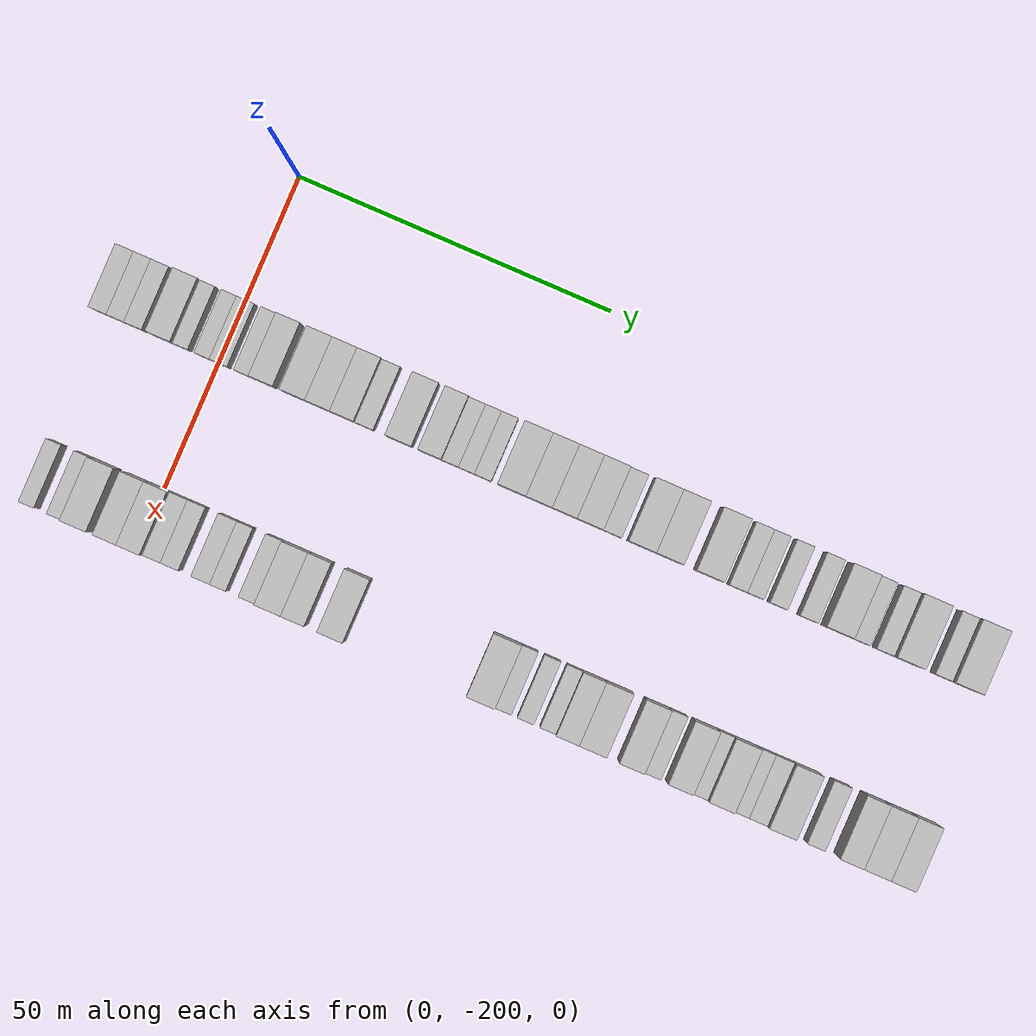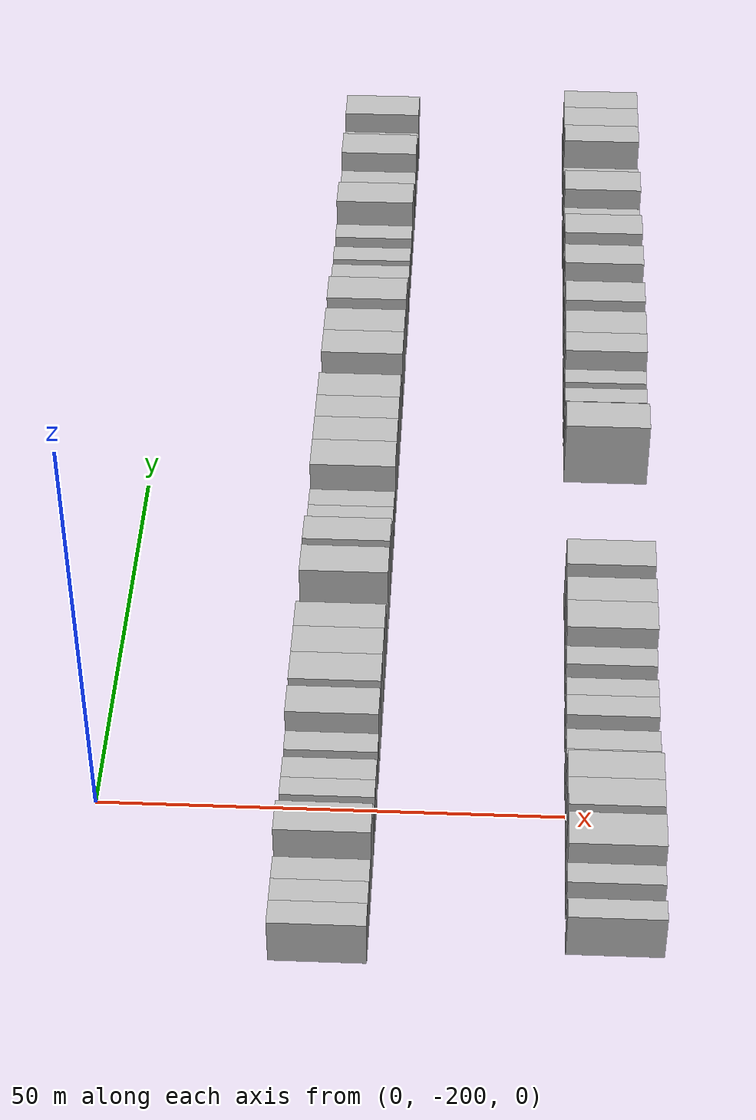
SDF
<sdf version="1.6">
 <world name="default">
  <model name="building_1">
   <static>1</static>
   <pose>25.0000 -218.5558 0 0.000000 0.000000 0.000000</pose>
   <link name="link">
    <pose>0 0 3.00 0 0 0</pose>
    <collision name="collision"><geometry><box><size>10.0000 2.8884 6.0000</size></box></geometry></collision>
    <visual name="visual">
     <cast_shadows>0</cast_shadows>
     <geometry><box><size>10.0000 2.8884 6.0000</size></box></geometry>
     <material>
      <script>
       <uri>model://HANNAS_wall/materials/scripts</uri>
       <uri>model://HANNAS_wall/materials/textures</uri>
       <name>vrc/HANNAS_wall</name>
      </script>
     </material>
    </visual>
   </link>
  </model>
  <model name="building_2">
   <static>1</static>
   <pose>25.0000 -215.7326 0 0.000000 0.000000 0.000000</pose>
   <link name="link">
    <pose>0 0 3.00 0 0 0</pose>
    <collision name="collision"><geometry><box><size>10.0000 2.7580 6.0000</size></box></geometry></collision>
    <visual name="visual">
     <cast_shadows>0</cast_shadows>
     <geometry><box><size>10.0000 2.7580 6.0000</size></box></geometry>
     <material>
      <script>
       <uri>model://HANNAS_wall/materials/scripts</uri>
       <uri>model://HANNAS_wall/materials/textures</uri>
       <name>vrc/HANNAS_wall</name>
      </script>
     </material>
    </visual>
   </link>
  </model>
  <model name="building_3">
   <static>1</static>
   <pose>25.0000 -212.9331 0 0.000000 0.000000 0.000000</pose>
   <link name="link">
    <pose>0 0 3.00 0 0 0</pose>
    <collision name="collision"><geometry><box><size>10.0000 2.8410 6.0000</size></box></geometry></collision>
    <visual name="visual">
     <cast_shadows>0</cast_shadows>
     <geometry><box><size>10.0000 2.8410 6.0000</size></box></geometry>
     <material>
      <script>
       <uri>model://HANNAS_wall/materials/scripts</uri>
       <uri>model://HANNAS_wall/materials/textures</uri>
       <name>vrc/HANNAS_wall</name>
      </script>
     </material>
    </visual>
   </link>
  </model>
  <model name="building_4">
   <static>1</static>
   <pose>25.0000 -208.5727 0 0.000000 0.000000 0.000000</pose>
   <link name="link">
    <pose>0 0 4.50 0 0 0</pose>
    <collision name="collision"><geometry><box><size>10.0000 3.8800 9.0000</size></box></geometry></collision>
    <visual name="visual">
     <cast_shadows>0</cast_shadows>
     <geometry><box><size>10.0000 3.8800 9.0000</size></box></geometry>
     <material>
      <script>
       <uri>model://HANNAS_wall/materials/scripts</uri>
       <uri>model://HANNAS_wall/materials/textures</uri>
       <name>vrc/HANNAS_wall</name>
      </script>
     </material>
    </visual>
   </link>
  </model>
  <model name="building_5">
   <static>1</static>
   <pose>25.0000 -205.4299 0 0.000000 0.000000 0.000000</pose>
   <link name="link">
    <pose>0 0 3.00 0 0 0</pose>
    <collision name="collision"><geometry><box><size>10.0000 2.4056 6.0000</size></box></geometry></collision>
    <visual name="visual">
     <cast_shadows>0</cast_shadows>
     <geometry><box><size>10.0000 2.4056 6.0000</size></box></geometry>
     <material>
      <script>
       <uri>model://HANNAS_wall/materials/scripts</uri>
       <uri>model://HANNAS_wall/materials/textures</uri>
       <name>vrc/HANNAS_wall</name>
      </script>
     </material>
    </visual>
   </link>
  </model>
  <model name="building_6">
   <static>1</static>
   <pose>25.0000 -202.0179 0 0.000000 0.000000 0.000000</pose>
   <link name="link">
    <pose>0 0 3.00 0 0 0</pose>
    <collision name="collision"><geometry><box><size>10.0000 2.4182 6.0000</size></box></geometry></collision>
    <visual name="visual">
     <cast_shadows>0</cast_shadows>
     <geometry><box><size>10.0000 2.4182 6.0000</size></box></geometry>
     <material>
      <script>
       <uri>model://HANNAS_wall/materials/scripts</uri>
       <uri>model://HANNAS_wall/materials/textures</uri>
       <name>vrc/HANNAS_wall</name>
      </script>
     </material>
    </visual>
   </link>
  </model>
  <model name="building_7">
   <static>1</static>
   <pose>25.0000 -199.3907 0 0.000000 0.000000 0.000000</pose>
   <link name="link">
    <pose>0 0 3.00 0 0 0</pose>
    <collision name="collision"><geometry><box><size>10.0000 2.8362 6.0000</size></box></geometry></collision>
    <visual name="visual">
     <cast_shadows>0</cast_shadows>
     <geometry><box><size>10.0000 2.8362 6.0000</size></box></geometry>
     <material>
      <script>
       <uri>model://HANNAS_wall/materials/scripts</uri>
       <uri>model://HANNAS_wall/materials/textures</uri>
       <name>vrc/HANNAS_wall</name>
      </script>
     </material>
    </visual>
   </link>
  </model>
  <model name="building_8">
   <static>1</static>
   <pose>25.0000 -195.6416 0 0.000000 0.000000 0.000000</pose>
   <link name="link">
    <pose>0 0 3.00 0 0 0</pose>
    <collision name="collision"><geometry><box><size>10.0000 2.6619 6.0000</size></box></geometry></collision>
    <visual name="visual">
     <cast_shadows>0</cast_shadows>
     <geometry><box><size>10.0000 2.6619 6.0000</size></box></geometry>
     <material>
      <script>
       <uri>model://HANNAS_wall/materials/scripts</uri>
       <uri>model://HANNAS_wall/materials/textures</uri>
       <name>vrc/HANNAS_wall</name>
      </script>
     </material>
    </visual>
   </link>
  </model>
  <model name="building_9">
   <static>1</static>
   <pose>25.0000 -192.4022 0 0.000000 0.000000 0.000000</pose>
   <link name="link">
    <pose>0 0 4.50 0 0 0</pose>
    <collision name="collision"><geometry><box><size>10.0000 3.8170 9.0000</size></box></geometry></collision>
    <visual name="visual">
     <cast_shadows>0</cast_shadows>
     <geometry><box><size>10.0000 3.8170 9.0000</size></box></geometry>
     <material>
      <script>
       <uri>model://HANNAS_wall/materials/scripts</uri>
       <uri>model://HANNAS_wall/materials/textures</uri>
       <name>vrc/HANNAS_wall</name>
      </script>
     </material>
    </visual>
   </link>
  </model>
  <model name="building_10">
   <static>1</static>
   <pose>25.0000 -187.4737 0 0.000000 0.000000 0.000000</pose>
   <link name="link">
    <pose>0 0 4.50 0 0 0</pose>
    <collision name="collision"><geometry><box><size>10.0000 4.0400 9.0000</size></box></geometry></collision>
    <visual name="visual">
     <cast_shadows>0</cast_shadows>
     <geometry><box><size>10.0000 4.0400 9.0000</size></box></geometry>
     <material>
      <script>
       <uri>model://HANNAS_wall/materials/scripts</uri>
       <uri>model://HANNAS_wall/materials/textures</uri>
       <name>vrc/HANNAS_wall</name>
      </script>
     </material>
    </visual>
   </link>
  </model>
  <model name="building_11">
   <static>1</static>
   <pose>25.0000 -183.4973 0 0.000000 0.000000 0.000000</pose>
   <link name="link">
    <pose>0 0 4.50 0 0 0</pose>
    <collision name="collision"><geometry><box><size>10.0000 3.9128 9.0000</size></box></geometry></collision>
    <visual name="visual">
     <cast_shadows>0</cast_shadows>
     <geometry><box><size>10.0000 3.9128 9.0000</size></box></geometry>
     <material>
      <script>
       <uri>model://HANNAS_wall/materials/scripts</uri>
       <uri>model://HANNAS_wall/materials/textures</uri>
       <name>vrc/HANNAS_wall</name>
      </script>
     </material>
    </visual>
   </link>
  </model>
  <model name="building_12">
   <static>1</static>
   <pose>25.0000 -179.6681 0 0.000000 0.000000 0.000000</pose>
   <link name="link">
    <pose>0 0 4.50 0 0 0</pose>
    <collision name="collision"><geometry><box><size>10.0000 3.7454 9.0000</size></box></geometry></collision>
    <visual name="visual">
     <cast_shadows>0</cast_shadows>
     <geometry><box><size>10.0000 3.7454 9.0000</size></box></geometry>
     <material>
      <script>
       <uri>model://HANNAS_wall/materials/scripts</uri>
       <uri>model://HANNAS_wall/materials/textures</uri>
       <name>vrc/HANNAS_wall</name>
      </script>
     </material>
    </visual>
   </link>
  </model>
  <model name="building_13">
   <static>1</static>
   <pose>25.0000 -176.3302 0 0.000000 0.000000 0.000000</pose>
   <link name="link">
    <pose>0 0 3.00 0 0 0</pose>
    <collision name="collision"><geometry><box><size>10.0000 2.9305 6.0000</size></box></geometry></collision>
    <visual name="visual">
     <cast_shadows>0</cast_shadows>
     <geometry><box><size>10.0000 2.9305 6.0000</size></box></geometry>
     <material>
      <script>
       <uri>model://HANNAS_wall/materials/scripts</uri>
       <uri>model://HANNAS_wall/materials/textures</uri>
       <name>vrc/HANNAS_wall</name>
      </script>
     </material>
    </visual>
   </link>
  </model>
  <model name="building_14">
   <static>1</static>
   <pose>25.0000 -170.7841 0 0.000000 0.000000 0.000000</pose>
   <link name="link">
    <pose>0 0 4.50 0 0 0</pose>
    <collision name="collision"><geometry><box><size>10.0000 4.1616 9.0000</size></box></geometry></collision>
    <visual name="visual">
     <cast_shadows>0</cast_shadows>
     <geometry><box><size>10.0000 4.1616 9.0000</size></box></geometry>
     <material>
      <script>
       <uri>model://HANNAS_wall/materials/scripts</uri>
       <uri>model://HANNAS_wall/materials/textures</uri>
       <name>vrc/HANNAS_wall</name>
      </script>
     </material>
    </visual>
   </link>
  </model>
  <model name="building_15">
   <static>1</static>
   <pose>25.0000 -165.8461 0 0.000000 0.000000 0.000000</pose>
   <link name="link">
    <pose>0 0 4.50 0 0 0</pose>
    <collision name="collision"><geometry><box><size>10.0000 3.7143 9.0000</size></box></geometry></collision>
    <visual name="visual">
     <cast_shadows>0</cast_shadows>
     <geometry><box><size>10.0000 3.7143 9.0000</size></box></geometry>
     <material>
      <script>
       <uri>model://HANNAS_wall/materials/scripts</uri>
       <uri>model://HANNAS_wall/materials/textures</uri>
       <name>vrc/HANNAS_wall</name>
      </script>
     </material>
    </visual>
   </link>
  </model>
  <model name="building_16">
   <static>1</static>
   <pose>25.0000 -162.6667 0 0.000000 0.000000 0.000000</pose>
   <link name="link">
    <pose>0 0 3.00 0 0 0</pose>
    <collision name="collision"><geometry><box><size>10.0000 2.6445 6.0000</size></box></geometry></collision>
    <visual name="visual">
     <cast_shadows>0</cast_shadows>
     <geometry><box><size>10.0000 2.6445 6.0000</size></box></geometry>
     <material>
      <script>
       <uri>model://HANNAS_wall/materials/scripts</uri>
       <uri>model://HANNAS_wall/materials/textures</uri>
       <name>vrc/HANNAS_wall</name>
      </script>
     </material>
    </visual>
   </link>
  </model>
  <model name="building_17">
   <static>1</static>
   <pose>25.0000 -160.0820 0 0.000000 0.000000 0.000000</pose>
   <link name="link">
    <pose>0 0 3.00 0 0 0</pose>
    <collision name="collision"><geometry><box><size>10.0000 2.5250 6.0000</size></box></geometry></collision>
    <visual name="visual">
     <cast_shadows>0</cast_shadows>
     <geometry><box><size>10.0000 2.5250 6.0000</size></box></geometry>
     <material>
      <script>
       <uri>model://HANNAS_wall/materials/scripts</uri>
       <uri>model://HANNAS_wall/materials/textures</uri>
       <name>vrc/HANNAS_wall</name>
      </script>
     </material>
    </visual>
   </link>
  </model>
  <model name="building_18">
   <static>1</static>
   <pose>25.0000 -157.4782 0 0.000000 0.000000 0.000000</pose>
   <link name="link">
    <pose>0 0 3.00 0 0 0</pose>
    <collision name="collision"><geometry><box><size>10.0000 2.6825 6.0000</size></box></geometry></collision>
    <visual name="visual">
     <cast_shadows>0</cast_shadows>
     <geometry><box><size>10.0000 2.6825 6.0000</size></box></geometry>
     <material>
      <script>
       <uri>model://HANNAS_wall/materials/scripts</uri>
       <uri>model://HANNAS_wall/materials/textures</uri>
       <name>vrc/HANNAS_wall</name>
      </script>
     </material>
    </visual>
   </link>
  </model>
  <model name="building_19">
   <static>1</static>
   <pose>25.0000 -152.8965 0 0.000000 0.000000 0.000000</pose>
   <link name="link">
    <pose>0 0 4.50 0 0 0</pose>
    <collision name="collision"><geometry><box><size>10.0000 4.4811 9.0000</size></box></geometry></collision>
    <visual name="visual">
     <cast_shadows>0</cast_shadows>
     <geometry><box><size>10.0000 4.4811 9.0000</size></box></geometry>
     <material>
      <script>
       <uri>model://HANNAS_wall/materials/scripts</uri>
       <uri>model://HANNAS_wall/materials/textures</uri>
       <name>vrc/HANNAS_wall</name>
      </script>
     </material>
    </visual>
   </link>
  </model>
  <model name="building_20">
   <static>1</static>
   <pose>25.0000 -148.5810 0 0.000000 0.000000 0.000000</pose>
   <link name="link">
    <pose>0 0 4.50 0 0 0</pose>
    <collision name="collision"><geometry><box><size>10.0000 4.1498 9.0000</size></box></geometry></collision>
    <visual name="visual">
     <cast_shadows>0</cast_shadows>
     <geometry><box><size>10.0000 4.1498 9.0000</size></box></geometry>
     <material>
      <script>
       <uri>model://HANNAS_wall/materials/scripts</uri>
       <uri>model://HANNAS_wall/materials/textures</uri>
       <name>vrc/HANNAS_wall</name>
      </script>
     </material>
    </visual>
   </link>
  </model>
  <model name="building_21">
   <static>1</static>
   <pose>25.0000 -144.5503 0 0.000000 0.000000 0.000000</pose>
   <link name="link">
    <pose>0 0 4.50 0 0 0</pose>
    <collision name="collision"><geometry><box><size>10.0000 3.9116 9.0000</size></box></geometry></collision>
    <visual name="visual">
     <cast_shadows>0</cast_shadows>
     <geometry><box><size>10.0000 3.9116 9.0000</size></box></geometry>
     <material>
      <script>
       <uri>model://HANNAS_wall/materials/scripts</uri>
       <uri>model://HANNAS_wall/materials/textures</uri>
       <name>vrc/HANNAS_wall</name>
      </script>
     </material>
    </visual>
   </link>
  </model>
  <model name="building_22">
   <static>1</static>
   <pose>25.0000 -140.5133 0 0.000000 0.000000 0.000000</pose>
   <link name="link">
    <pose>0 0 4.50 0 0 0</pose>
    <collision name="collision"><geometry><box><size>10.0000 4.1624 9.0000</size></box></geometry></collision>
    <visual name="visual">
     <cast_shadows>0</cast_shadows>
     <geometry><box><size>10.0000 4.1624 9.0000</size></box></geometry>
     <material>
      <script>
       <uri>model://HANNAS_wall/materials/scripts</uri>
       <uri>model://HANNAS_wall/materials/textures</uri>
       <name>vrc/HANNAS_wall</name>
      </script>
     </material>
    </visual>
   </link>
  </model>
  <model name="building_23">
   <static>1</static>
   <pose>25.0000 -136.9468 0 0.000000 0.000000 0.000000</pose>
   <link name="link">
    <pose>0 0 3.00 0 0 0</pose>
    <collision name="collision"><geometry><box><size>10.0000 2.9705 6.0000</size></box></geometry></collision>
    <visual name="visual">
     <cast_shadows>0</cast_shadows>
     <geometry><box><size>10.0000 2.9705 6.0000</size></box></geometry>
     <material>
      <script>
       <uri>model://HANNAS_wall/materials/scripts</uri>
       <uri>model://HANNAS_wall/materials/textures</uri>
       <name>vrc/HANNAS_wall</name>
      </script>
     </material>
    </visual>
   </link>
  </model>
  <model name="building_24">
   <static>1</static>
   <pose>25.0000 -132.2876 0 0.000000 0.000000 0.000000</pose>
   <link name="link">
    <pose>0 0 4.50 0 0 0</pose>
    <collision name="collision"><geometry><box><size>10.0000 4.3480 9.0000</size></box></geometry></collision>
    <visual name="visual">
     <cast_shadows>0</cast_shadows>
     <geometry><box><size>10.0000 4.3480 9.0000</size></box></geometry>
     <material>
      <script>
       <uri>model://HANNAS_wall/materials/scripts</uri>
       <uri>model://HANNAS_wall/materials/textures</uri>
       <name>vrc/HANNAS_wall</name>
      </script>
     </material>
    </visual>
   </link>
  </model>
  <model name="building_25">
   <static>1</static>
   <pose>25.0000 -127.9378 0 0.000000 0.000000 0.000000</pose>
   <link name="link">
    <pose>0 0 4.50 0 0 0</pose>
    <collision name="collision"><geometry><box><size>10.0000 4.3516 9.0000</size></box></geometry></collision>
    <visual name="visual">
     <cast_shadows>0</cast_shadows>
     <geometry><box><size>10.0000 4.3516 9.0000</size></box></geometry>
     <material>
      <script>
       <uri>model://HANNAS_wall/materials/scripts</uri>
       <uri>model://HANNAS_wall/materials/textures</uri>
       <name>vrc/HANNAS_wall</name>
      </script>
     </material>
    </visual>
   </link>
  </model>
  <model name="building_26">
   <static>1</static>
   <pose>25.0000 -121.5773 0 0.000000 0.000000 0.000000</pose>
   <link name="link">
    <pose>0 0 4.50 0 0 0</pose>
    <collision name="collision"><geometry><box><size>10.0000 4.3694 9.0000</size></box></geometry></collision>
    <visual name="visual">
     <cast_shadows>0</cast_shadows>
     <geometry><box><size>10.0000 4.3694 9.0000</size></box></geometry>
     <material>
      <script>
       <uri>model://HANNAS_wall/materials/scripts</uri>
       <uri>model://HANNAS_wall/materials/textures</uri>
       <name>vrc/HANNAS_wall</name>
      </script>
     </material>
    </visual>
   </link>
  </model>
  <model name="building_27">
   <static>1</static>
   <pose>25.0000 -116.9687 0 0.000000 0.000000 0.000000</pose>
   <link name="link">
    <pose>0 0 3.00 0 0 0</pose>
    <collision name="collision"><geometry><box><size>10.0000 2.8477 6.0000</size></box></geometry></collision>
    <visual name="visual">
     <cast_shadows>0</cast_shadows>
     <geometry><box><size>10.0000 2.8477 6.0000</size></box></geometry>
     <material>
      <script>
       <uri>model://HANNAS_wall/materials/scripts</uri>
       <uri>model://HANNAS_wall/materials/textures</uri>
       <name>vrc/HANNAS_wall</name>
      </script>
     </material>
    </visual>
   </link>
  </model>
  <model name="building_28">
   <static>1</static>
   <pose>25.0000 -114.2476 0 0.000000 0.000000 0.000000</pose>
   <link name="link">
    <pose>0 0 3.00 0 0 0</pose>
    <collision name="collision"><geometry><box><size>10.0000 2.5945 6.0000</size></box></geometry></collision>
    <visual name="visual">
     <cast_shadows>0</cast_shadows>
     <geometry><box><size>10.0000 2.5945 6.0000</size></box></geometry>
     <material>
      <script>
       <uri>model://HANNAS_wall/materials/scripts</uri>
       <uri>model://HANNAS_wall/materials/textures</uri>
       <name>vrc/HANNAS_wall</name>
      </script>
     </material>
    </visual>
   </link>
  </model>
  <model name="building_29">
   <static>1</static>
   <pose>25.0000 -110.5674 0 0.000000 0.000000 0.000000</pose>
   <link name="link">
    <pose>0 0 3.00 0 0 0</pose>
    <collision name="collision"><geometry><box><size>10.0000 2.7659 6.0000</size></box></geometry></collision>
    <visual name="visual">
     <cast_shadows>0</cast_shadows>
     <geometry><box><size>10.0000 2.7659 6.0000</size></box></geometry>
     <material>
      <script>
       <uri>model://HANNAS_wall/materials/scripts</uri>
       <uri>model://HANNAS_wall/materials/textures</uri>
       <name>vrc/HANNAS_wall</name>
      </script>
     </material>
    </visual>
   </link>
  </model>
  <model name="building_30">
   <static>1</static>
   <pose>25.0000 -105.7536 0 0.000000 0.000000 0.000000</pose>
   <link name="link">
    <pose>0 0 3.00 0 0 0</pose>
    <collision name="collision"><geometry><box><size>10.0000 2.8618 6.0000</size></box></geometry></collision>
    <visual name="visual">
     <cast_shadows>0</cast_shadows>
     <geometry><box><size>10.0000 2.8618 6.0000</size></box></geometry>
     <material>
      <script>
       <uri>model://HANNAS_wall/materials/scripts</uri>
       <uri>model://HANNAS_wall/materials/textures</uri>
       <name>vrc/HANNAS_wall</name>
      </script>
     </material>
    </visual>
   </link>
  </model>
  <model name="building_31">
   <static>1</static>
   <pose>25.0000 -101.1502 0 0.000000 0.000000 0.000000</pose>
   <link name="link">
    <pose>0 0 4.50 0 0 0</pose>
    <collision name="collision"><geometry><box><size>10.0000 4.3452 9.0000</size></box></geometry></collision>
    <visual name="visual">
     <cast_shadows>0</cast_shadows>
     <geometry><box><size>10.0000 4.3452 9.0000</size></box></geometry>
     <material>
      <script>
       <uri>model://HANNAS_wall/materials/scripts</uri>
       <uri>model://HANNAS_wall/materials/textures</uri>
       <name>vrc/HANNAS_wall</name>
      </script>
     </material>
    </visual>
   </link>
  </model>
  <model name="building_32">
   <static>1</static>
   <pose>25.0000 -97.5280 0 0.000000 0.000000 0.000000</pose>
   <link name="link">
    <pose>0 0 3.00 0 0 0</pose>
    <collision name="collision"><geometry><box><size>10.0000 2.8991 6.0000</size></box></geometry></collision>
    <visual name="visual">
     <cast_shadows>0</cast_shadows>
     <geometry><box><size>10.0000 2.8991 6.0000</size></box></geometry>
     <material>
      <script>
       <uri>model://HANNAS_wall/materials/scripts</uri>
       <uri>model://HANNAS_wall/materials/textures</uri>
       <name>vrc/HANNAS_wall</name>
      </script>
     </material>
    </visual>
   </link>
  </model>
  <model name="building_33">
   <static>1</static>
   <pose>25.0000 -93.6743 0 0.000000 0.000000 0.000000</pose>
   <link name="link">
    <pose>0 0 3.00 0 0 0</pose>
    <collision name="collision"><geometry><box><size>10.0000 2.8083 6.0000</size></box></geometry></collision>
    <visual name="visual">
     <cast_shadows>0</cast_shadows>
     <geometry><box><size>10.0000 2.8083 6.0000</size></box></geometry>
     <material>
      <script>
       <uri>model://HANNAS_wall/materials/scripts</uri>
       <uri>model://HANNAS_wall/materials/textures</uri>
       <name>vrc/HANNAS_wall</name>
      </script>
     </material>
    </visual>
   </link>
  </model>
  <model name="building_34">
   <static>1</static>
   <pose>25.0000 -90.0239 0 0.000000 0.000000 0.000000</pose>
   <link name="link">
    <pose>0 0 4.50 0 0 0</pose>
    <collision name="collision"><geometry><box><size>10.0000 4.4925 9.0000</size></box></geometry></collision>
    <visual name="visual">
     <cast_shadows>0</cast_shadows>
     <geometry><box><size>10.0000 4.4925 9.0000</size></box></geometry>
     <material>
      <script>
       <uri>model://HANNAS_wall/materials/scripts</uri>
       <uri>model://HANNAS_wall/materials/textures</uri>
       <name>vrc/HANNAS_wall</name>
      </script>
     </material>
    </visual>
   </link>
  </model>
  <model name="building_35">
   <static>1</static>
   <pose>25.0000 -84.4190 0 0.000000 0.000000 0.000000</pose>
   <link name="link">
    <pose>0 0 3.00 0 0 0</pose>
    <collision name="collision"><geometry><box><size>10.0000 2.7171 6.0000</size></box></geometry></collision>
    <visual name="visual">
     <cast_shadows>0</cast_shadows>
     <geometry><box><size>10.0000 2.7171 6.0000</size></box></geometry>
     <material>
      <script>
       <uri>model://HANNAS_wall/materials/scripts</uri>
       <uri>model://HANNAS_wall/materials/textures</uri>
       <name>vrc/HANNAS_wall</name>
      </script>
     </material>
    </visual>
   </link>
  </model>
  <model name="building_36">
   <static>1</static>
   <pose>25.0000 -80.8157 0 0.000000 0.000000 0.000000</pose>
   <link name="link">
    <pose>0 0 4.50 0 0 0</pose>
    <collision name="collision"><geometry><box><size>10.0000 4.4894 9.0000</size></box></geometry></collision>
    <visual name="visual">
     <cast_shadows>0</cast_shadows>
     <geometry><box><size>10.0000 4.4894 9.0000</size></box></geometry>
     <material>
      <script>
       <uri>model://HANNAS_wall/materials/scripts</uri>
       <uri>model://HANNAS_wall/materials/textures</uri>
       <name>vrc/HANNAS_wall</name>
      </script>
     </material>
    </visual>
   </link>
  </model>
  <model name="building_110">
   <static>1</static>
   <pose>55.0000 -216.7792 0 0.000000 0.000000 0.000000</pose>
   <link name="link">
    <pose>0 0 3.00 0 0 0</pose>
    <collision name="collision"><geometry><box><size>10.0000 2.4416 6.0000</size></box></geometry></collision>
    <visual name="visual">
     <cast_shadows>0</cast_shadows>
     <geometry><box><size>10.0000 2.4416 6.0000</size></box></geometry>
     <material>
      <script>
       <uri>model://HANNAS_wall/materials/scripts</uri>
       <uri>model://HANNAS_wall/materials/textures</uri>
       <name>vrc/HANNAS_wall</name>
      </script>
     </material>
    </visual>
   </link>
  </model>
  <model name="building_111">
   <static>1</static>
   <pose>55.0000 -212.2853 0 0.000000 0.000000 0.000000</pose>
   <link name="link">
    <pose>0 0 3.00 0 0 0</pose>
    <collision name="collision"><geometry><box><size>10.0000 2.5462 6.0000</size></box></geometry></collision>
    <visual name="visual">
     <cast_shadows>0</cast_shadows>
     <geometry><box><size>10.0000 2.5462 6.0000</size></box></geometry>
     <material>
      <script>
       <uri>model://HANNAS_wall/materials/scripts</uri>
       <uri>model://HANNAS_wall/materials/textures</uri>
       <name>vrc/HANNAS_wall</name>
      </script>
     </material>
    </visual>
   </link>
  </model>
  <model name="building_112">
   <static>1</static>
   <pose>55.0000 -208.9195 0 0.000000 0.000000 0.000000</pose>
   <link name="link">
    <pose>0 0 4.50 0 0 0</pose>
    <collision name="collision"><geometry><box><size>10.0000 4.1855 9.0000</size></box></geometry></collision>
    <visual name="visual">
     <cast_shadows>0</cast_shadows>
     <geometry><box><size>10.0000 4.1855 9.0000</size></box></geometry>
     <material>
      <script>
       <uri>model://HANNAS_wall/materials/scripts</uri>
       <uri>model://HANNAS_wall/materials/textures</uri>
       <name>vrc/HANNAS_wall</name>
      </script>
     </material>
    </visual>
   </link>
  </model>
  <model name="building_113">
   <static>1</static>
   <pose>55.0000 -203.9739 0 0.000000 0.000000 0.000000</pose>
   <link name="link">
    <pose>0 0 4.50 0 0 0</pose>
    <collision name="collision"><geometry><box><size>10.0000 3.7058 9.0000</size></box></geometry></collision>
    <visual name="visual">
     <cast_shadows>0</cast_shadows>
     <geometry><box><size>10.0000 3.7058 9.0000</size></box></geometry>
     <material>
      <script>
       <uri>model://HANNAS_wall/materials/scripts</uri>
       <uri>model://HANNAS_wall/materials/textures</uri>
       <name>vrc/HANNAS_wall</name>
      </script>
     </material>
    </visual>
   </link>
  </model>
  <model name="building_114">
   <static>1</static>
   <pose>55.0000 -200.2652 0 0.000000 0.000000 0.000000</pose>
   <link name="link">
    <pose>0 0 4.50 0 0 0</pose>
    <collision name="collision"><geometry><box><size>10.0000 3.7115 9.0000</size></box></geometry></collision>
    <visual name="visual">
     <cast_shadows>0</cast_shadows>
     <geometry><box><size>10.0000 3.7115 9.0000</size></box></geometry>
     <material>
      <script>
       <uri>model://HANNAS_wall/materials/scripts</uri>
       <uri>model://HANNAS_wall/materials/textures</uri>
       <name>vrc/HANNAS_wall</name>
      </script>
     </material>
    </visual>
   </link>
  </model>
  <model name="building_115">
   <static>1</static>
   <pose>55.0000 -196.9831 0 0.000000 0.000000 0.000000</pose>
   <link name="link">
    <pose>0 0 3.00 0 0 0</pose>
    <collision name="collision"><geometry><box><size>10.0000 2.8527 6.0000</size></box></geometry></collision>
    <visual name="visual">
     <cast_shadows>0</cast_shadows>
     <geometry><box><size>10.0000 2.8527 6.0000</size></box></geometry>
     <material>
      <script>
       <uri>model://HANNAS_wall/materials/scripts</uri>
       <uri>model://HANNAS_wall/materials/textures</uri>
       <name>vrc/HANNAS_wall</name>
      </script>
     </material>
    </visual>
   </link>
  </model>
  <model name="building_116">
   <static>1</static>
   <pose>55.0000 -194.1306 0 0.000000 0.000000 0.000000</pose>
   <link name="link">
    <pose>0 0 3.00 0 0 0</pose>
    <collision name="collision"><geometry><box><size>10.0000 2.8522 6.0000</size></box></geometry></collision>
    <visual name="visual">
     <cast_shadows>0</cast_shadows>
     <geometry><box><size>10.0000 2.8522 6.0000</size></box></geometry>
     <material>
      <script>
       <uri>model://HANNAS_wall/materials/scripts</uri>
       <uri>model://HANNAS_wall/materials/textures</uri>
       <name>vrc/HANNAS_wall</name>
      </script>
     </material>
    </visual>
   </link>
  </model>
  <model name="building_117">
   <static>1</static>
   <pose>55.0000 -189.2230 0 0.000000 0.000000 0.000000</pose>
   <link name="link">
    <pose>0 0 3.00 0 0 0</pose>
    <collision name="collision"><geometry><box><size>10.0000 2.9630 6.0000</size></box></geometry></collision>
    <visual name="visual">
     <cast_shadows>0</cast_shadows>
     <geometry><box><size>10.0000 2.9630 6.0000</size></box></geometry>
     <material>
      <script>
       <uri>model://HANNAS_wall/materials/scripts</uri>
       <uri>model://HANNAS_wall/materials/textures</uri>
       <name>vrc/HANNAS_wall</name>
      </script>
     </material>
    </visual>
   </link>
  </model>
  <model name="building_118">
   <static>1</static>
   <pose>55.0000 -186.4665 0 0.000000 0.000000 0.000000</pose>
   <link name="link">
    <pose>0 0 3.00 0 0 0</pose>
    <collision name="collision"><geometry><box><size>10.0000 2.5501 6.0000</size></box></geometry></collision>
    <visual name="visual">
     <cast_shadows>0</cast_shadows>
     <geometry><box><size>10.0000 2.5501 6.0000</size></box></geometry>
     <material>
      <script>
       <uri>model://HANNAS_wall/materials/scripts</uri>
       <uri>model://HANNAS_wall/materials/textures</uri>
       <name>vrc/HANNAS_wall</name>
      </script>
     </material>
    </visual>
   </link>
  </model>
  <model name="building_119">
   <static>1</static>
   <pose>55.0000 -181.8140 0 0.000000 0.000000 0.000000</pose>
   <link name="link">
    <pose>0 0 3.00 0 0 0</pose>
    <collision name="collision"><geometry><box><size>10.0000 2.7550 6.0000</size></box></geometry></collision>
    <visual name="visual">
     <cast_shadows>0</cast_shadows>
     <geometry><box><size>10.0000 2.7550 6.0000</size></box></geometry>
     <material>
      <script>
       <uri>model://HANNAS_wall/materials/scripts</uri>
       <uri>model://HANNAS_wall/materials/textures</uri>
       <name>vrc/HANNAS_wall</name>
      </script>
     </material>
    </visual>
   </link>
  </model>
  <model name="building_120">
   <static>1</static>
   <pose>55.0000 -178.3437 0 0.000000 0.000000 0.000000</pose>
   <link name="link">
    <pose>0 0 4.50 0 0 0</pose>
    <collision name="collision"><geometry><box><size>10.0000 4.1857 9.0000</size></box></geometry></collision>
    <visual name="visual">
     <cast_shadows>0</cast_shadows>
     <geometry><box><size>10.0000 4.1857 9.0000</size></box></geometry>
     <material>
      <script>
       <uri>model://HANNAS_wall/materials/scripts</uri>
       <uri>model://HANNAS_wall/materials/textures</uri>
       <name>vrc/HANNAS_wall</name>
      </script>
     </material>
    </visual>
   </link>
  </model>
  <model name="building_121">
   <static>1</static>
   <pose>55.0000 -174.4002 0 0.000000 0.000000 0.000000</pose>
   <link name="link">
    <pose>0 0 4.50 0 0 0</pose>
    <collision name="collision"><geometry><box><size>10.0000 3.7012 9.0000</size></box></geometry></collision>
    <visual name="visual">
     <cast_shadows>0</cast_shadows>
     <geometry><box><size>10.0000 3.7012 9.0000</size></box></geometry>
     <material>
      <script>
       <uri>model://HANNAS_wall/materials/scripts</uri>
       <uri>model://HANNAS_wall/materials/textures</uri>
       <name>vrc/HANNAS_wall</name>
      </script>
     </material>
    </visual>
   </link>
  </model>
  <model name="building_122">
   <static>1</static>
   <pose>55.0000 -168.5254 0 0.000000 0.000000 0.000000</pose>
   <link name="link">
    <pose>0 0 4.50 0 0 0</pose>
    <collision name="collision"><geometry><box><size>10.0000 4.0484 9.0000</size></box></geometry></collision>
    <visual name="visual">
     <cast_shadows>0</cast_shadows>
     <geometry><box><size>10.0000 4.0484 9.0000</size></box></geometry>
     <material>
      <script>
       <uri>model://HANNAS_wall/materials/scripts</uri>
       <uri>model://HANNAS_wall/materials/textures</uri>
       <name>vrc/HANNAS_wall</name>
      </script>
     </material>
    </visual>
   </link>
  </model>
  <model name="building_123">
   <static>1</static>
   <pose>55.0000 -144.7860 0 0.000000 0.000000 0.000000</pose>
   <link name="link">
    <pose>0 0 4.50 0 0 0</pose>
    <collision name="collision"><geometry><box><size>10.0000 4.4768 9.0000</size></box></geometry></collision>
    <visual name="visual">
     <cast_shadows>0</cast_shadows>
     <geometry><box><size>10.0000 4.4768 9.0000</size></box></geometry>
     <material>
      <script>
       <uri>model://HANNAS_wall/materials/scripts</uri>
       <uri>model://HANNAS_wall/materials/textures</uri>
       <name>vrc/HANNAS_wall</name>
      </script>
     </material>
    </visual>
   </link>
  </model>
  <model name="building_124">
   <static>1</static>
   <pose>55.0000 -141.2542 0 0.000000 0.000000 0.000000</pose>
   <link name="link">
    <pose>0 0 3.00 0 0 0</pose>
    <collision name="collision"><geometry><box><size>10.0000 2.5869 6.0000</size></box></geometry></collision>
    <visual name="visual">
     <cast_shadows>0</cast_shadows>
     <geometry><box><size>10.0000 2.5869 6.0000</size></box></geometry>
     <material>
      <script>
       <uri>model://HANNAS_wall/materials/scripts</uri>
       <uri>model://HANNAS_wall/materials/textures</uri>
       <name>vrc/HANNAS_wall</name>
      </script>
     </material>
    </visual>
   </link>
  </model>
  <model name="building_125">
   <static>1</static>
   <pose>55.0000 -137.6722 0 0.000000 0.000000 0.000000</pose>
   <link name="link">
    <pose>0 0 3.00 0 0 0</pose>
    <collision name="collision"><geometry><box><size>10.0000 2.5771 6.0000</size></box></geometry></collision>
    <visual name="visual">
     <cast_shadows>0</cast_shadows>
     <geometry><box><size>10.0000 2.5771 6.0000</size></box></geometry>
     <material>
      <script>
       <uri>model://HANNAS_wall/materials/scripts</uri>
       <uri>model://HANNAS_wall/materials/textures</uri>
       <name>vrc/HANNAS_wall</name>
      </script>
     </material>
    </visual>
   </link>
  </model>
  <model name="building_126">
   <static>1</static>
   <pose>55.0000 -134.1371 0 0.000000 0.000000 0.000000</pose>
   <link name="link">
    <pose>0 0 3.00 0 0 0</pose>
    <collision name="collision"><geometry><box><size>10.0000 2.4931 6.0000</size></box></geometry></collision>
    <visual name="visual">
     <cast_shadows>0</cast_shadows>
     <geometry><box><size>10.0000 2.4931 6.0000</size></box></geometry>
     <material>
      <script>
       <uri>model://HANNAS_wall/materials/scripts</uri>
       <uri>model://HANNAS_wall/materials/textures</uri>
       <name>vrc/HANNAS_wall</name>
      </script>
     </material>
    </visual>
   </link>
  </model>
  <model name="building_127">
   <static>1</static>
   <pose>55.0000 -131.0715 0 0.000000 0.000000 0.000000</pose>
   <link name="link">
    <pose>0 0 4.50 0 0 0</pose>
    <collision name="collision"><geometry><box><size>10.0000 3.6380 9.0000</size></box></geometry></collision>
    <visual name="visual">
     <cast_shadows>0</cast_shadows>
     <geometry><box><size>10.0000 3.6380 9.0000</size></box></geometry>
     <material>
      <script>
       <uri>model://HANNAS_wall/materials/scripts</uri>
       <uri>model://HANNAS_wall/materials/textures</uri>
       <name>vrc/HANNAS_wall</name>
      </script>
     </material>
    </visual>
   </link>
  </model>
  <model name="building_128">
   <static>1</static>
   <pose>55.0000 -127.0923 0 0.000000 0.000000 0.000000</pose>
   <link name="link">
    <pose>0 0 4.50 0 0 0</pose>
    <collision name="collision"><geometry><box><size>10.0000 4.3204 9.0000</size></box></geometry></collision>
    <visual name="visual">
     <cast_shadows>0</cast_shadows>
     <geometry><box><size>10.0000 4.3204 9.0000</size></box></geometry>
     <material>
      <script>
       <uri>model://HANNAS_wall/materials/scripts</uri>
       <uri>model://HANNAS_wall/materials/textures</uri>
       <name>vrc/HANNAS_wall</name>
      </script>
     </material>
    </visual>
   </link>
  </model>
  <model name="building_129">
   <static>1</static>
   <pose>55.0000 -120.9498 0 0.000000 0.000000 0.000000</pose>
   <link name="link">
    <pose>0 0 4.50 0 0 0</pose>
    <collision name="collision"><geometry><box><size>10.0000 3.9645 9.0000</size></box></geometry></collision>
    <visual name="visual">
     <cast_shadows>0</cast_shadows>
     <geometry><box><size>10.0000 3.9645 9.0000</size></box></geometry>
     <material>
      <script>
       <uri>model://HANNAS_wall/materials/scripts</uri>
       <uri>model://HANNAS_wall/materials/textures</uri>
       <name>vrc/HANNAS_wall</name>
      </script>
     </material>
    </visual>
   </link>
  </model>
  <model name="building_130">
   <static>1</static>
   <pose>55.0000 -117.6116 0 0.000000 0.000000 0.000000</pose>
   <link name="link">
    <pose>0 0 3.00 0 0 0</pose>
    <collision name="collision"><geometry><box><size>10.0000 2.7120 6.0000</size></box></geometry></collision>
    <visual name="visual">
     <cast_shadows>0</cast_shadows>
     <geometry><box><size>10.0000 2.7120 6.0000</size></box></geometry>
     <material>
      <script>
       <uri>model://HANNAS_wall/materials/scripts</uri>
       <uri>model://HANNAS_wall/materials/textures</uri>
       <name>vrc/HANNAS_wall</name>
      </script>
     </material>
    </visual>
   </link>
  </model>
  <model name="building_131">
   <static>1</static>
   <pose>55.0000 -113.2705 0 0.000000 0.000000 0.000000</pose>
   <link name="link">
    <pose>0 0 4.50 0 0 0</pose>
    <collision name="collision"><geometry><box><size>10.0000 3.9703 9.0000</size></box></geometry></collision>
    <visual name="visual">
     <cast_shadows>0</cast_shadows>
     <geometry><box><size>10.0000 3.9703 9.0000</size></box></geometry>
     <material>
      <script>
       <uri>model://HANNAS_wall/materials/scripts</uri>
       <uri>model://HANNAS_wall/materials/textures</uri>
       <name>vrc/HANNAS_wall</name>
      </script>
     </material>
    </visual>
   </link>
  </model>
  <model name="building_132">
   <static>1</static>
   <pose>55.0000 -110.0604 0 0.000000 0.000000 0.000000</pose>
   <link name="link">
    <pose>0 0 3.00 0 0 0</pose>
    <collision name="collision"><geometry><box><size>10.0000 2.4500 6.0000</size></box></geometry></collision>
    <visual name="visual">
     <cast_shadows>0</cast_shadows>
     <geometry><box><size>10.0000 2.4500 6.0000</size></box></geometry>
     <material>
      <script>
       <uri>model://HANNAS_wall/materials/scripts</uri>
       <uri>model://HANNAS_wall/materials/textures</uri>
       <name>vrc/HANNAS_wall</name>
      </script>
     </material>
    </visual>
   </link>
  </model>
  <model name="building_133">
   <static>1</static>
   <pose>55.0000 -106.7992 0 0.000000 0.000000 0.000000</pose>
   <link name="link">
    <pose>0 0 4.50 0 0 0</pose>
    <collision name="collision"><geometry><box><size>10.0000 4.0723 9.0000</size></box></geometry></collision>
    <visual name="visual">
     <cast_shadows>0</cast_shadows>
     <geometry><box><size>10.0000 4.0723 9.0000</size></box></geometry>
     <material>
      <script>
       <uri>model://HANNAS_wall/materials/scripts</uri>
       <uri>model://HANNAS_wall/materials/textures</uri>
       <name>vrc/HANNAS_wall</name>
      </script>
     </material>
    </visual>
   </link>
  </model>
  <model name="building_134">
   <static>1</static>
   <pose>55.0000 -103.5260 0 0.000000 0.000000 0.000000</pose>
   <link name="link">
    <pose>0 0 3.00 0 0 0</pose>
    <collision name="collision"><geometry><box><size>10.0000 2.4742 6.0000</size></box></geometry></collision>
    <visual name="visual">
     <cast_shadows>0</cast_shadows>
     <geometry><box><size>10.0000 2.4742 6.0000</size></box></geometry>
     <material>
      <script>
       <uri>model://HANNAS_wall/materials/scripts</uri>
       <uri>model://HANNAS_wall/materials/textures</uri>
       <name>vrc/HANNAS_wall</name>
      </script>
     </material>
    </visual>
   </link>
  </model>
  <model name="building_135">
   <static>1</static>
   <pose>55.0000 -100.8201 0 0.000000 0.000000 0.000000</pose>
   <link name="link">
    <pose>0 0 3.00 0 0 0</pose>
    <collision name="collision"><geometry><box><size>10.0000 2.9376 6.0000</size></box></geometry></collision>
    <visual name="visual">
     <cast_shadows>0</cast_shadows>
     <geometry><box><size>10.0000 2.9376 6.0000</size></box></geometry>
     <material>
      <script>
       <uri>model://HANNAS_wall/materials/scripts</uri>
       <uri>model://HANNAS_wall/materials/textures</uri>
       <name>vrc/HANNAS_wall</name>
      </script>
     </material>
    </visual>
   </link>
  </model>
  <model name="building_136">
   <static>1</static>
   <pose>55.0000 -97.2091 0 0.000000 0.000000 0.000000</pose>
   <link name="link">
    <pose>0 0 4.50 0 0 0</pose>
    <collision name="collision"><geometry><box><size>10.0000 4.2844 9.0000</size></box></geometry></collision>
    <visual name="visual">
     <cast_shadows>0</cast_shadows>
     <geometry><box><size>10.0000 4.2844 9.0000</size></box></geometry>
     <material>
      <script>
       <uri>model://HANNAS_wall/materials/scripts</uri>
       <uri>model://HANNAS_wall/materials/textures</uri>
       <name>vrc/HANNAS_wall</name>
      </script>
     </material>
    </visual>
   </link>
  </model>
  <model name="building_137">
   <static>1</static>
   <pose>55.0000 -91.6468 0 0.000000 0.000000 0.000000</pose>
   <link name="link">
    <pose>0 0 3.00 0 0 0</pose>
    <collision name="collision"><geometry><box><size>10.0000 2.8403 6.0000</size></box></geometry></collision>
    <visual name="visual">
     <cast_shadows>0</cast_shadows>
     <geometry><box><size>10.0000 2.8403 6.0000</size></box></geometry>
     <material>
      <script>
       <uri>model://HANNAS_wall/materials/scripts</uri>
       <uri>model://HANNAS_wall/materials/textures</uri>
       <name>vrc/HANNAS_wall</name>
      </script>
     </material>
    </visual>
   </link>
  </model>
  <model name="building_138">
   <static>1</static>
   <pose>55.0000 -86.3472 0 0.000000 0.000000 0.000000</pose>
   <link name="link">
    <pose>0 0 4.50 0 0 0</pose>
    <collision name="collision"><geometry><box><size>10.0000 3.7589 9.0000</size></box></geometry></collision>
    <visual name="visual">
     <cast_shadows>0</cast_shadows>
     <geometry><box><size>10.0000 3.7589 9.0000</size></box></geometry>
     <material>
      <script>
       <uri>model://HANNAS_wall/materials/scripts</uri>
       <uri>model://HANNAS_wall/materials/textures</uri>
       <name>vrc/HANNAS_wall</name>
      </script>
     </material>
    </visual>
   </link>
  </model>
  <model name="building_139">
   <static>1</static>
   <pose>55.0000 -82.3375 0 0.000000 0.000000 0.000000</pose>
   <link name="link">
    <pose>0 0 4.50 0 0 0</pose>
    <collision name="collision"><geometry><box><size>10.0000 4.2604 9.0000</size></box></geometry></collision>
    <visual name="visual">
     <cast_shadows>0</cast_shadows>
     <geometry><box><size>10.0000 4.2604 9.0000</size></box></geometry>
     <material>
      <script>
       <uri>model://HANNAS_wall/materials/scripts</uri>
       <uri>model://HANNAS_wall/materials/textures</uri>
       <name>vrc/HANNAS_wall</name>
      </script>
     </material>
    </visual>
   </link>
  </model>
  <model name="building_140">
   <static>1</static>
   <pose>55.0000 -78.2278 0 0.000000 0.000000 0.000000</pose>
   <link name="link">
    <pose>0 0 4.50 0 0 0</pose>
    <collision name="collision"><geometry><box><size>10.0000 3.9591 9.0000</size></box></geometry></collision>
    <visual name="visual">
     <cast_shadows>0</cast_shadows>
     <geometry><box><size>10.0000 3.9591 9.0000</size></box></geometry>
     <material>
      <script>
       <uri>model://HANNAS_wall/materials/scripts</uri>
       <uri>model://HANNAS_wall/materials/textures</uri>
       <name>vrc/HANNAS_wall</name>
      </script>
     </material>
    </visual>
   </link>
  </model>
 </world>
</sdf>
